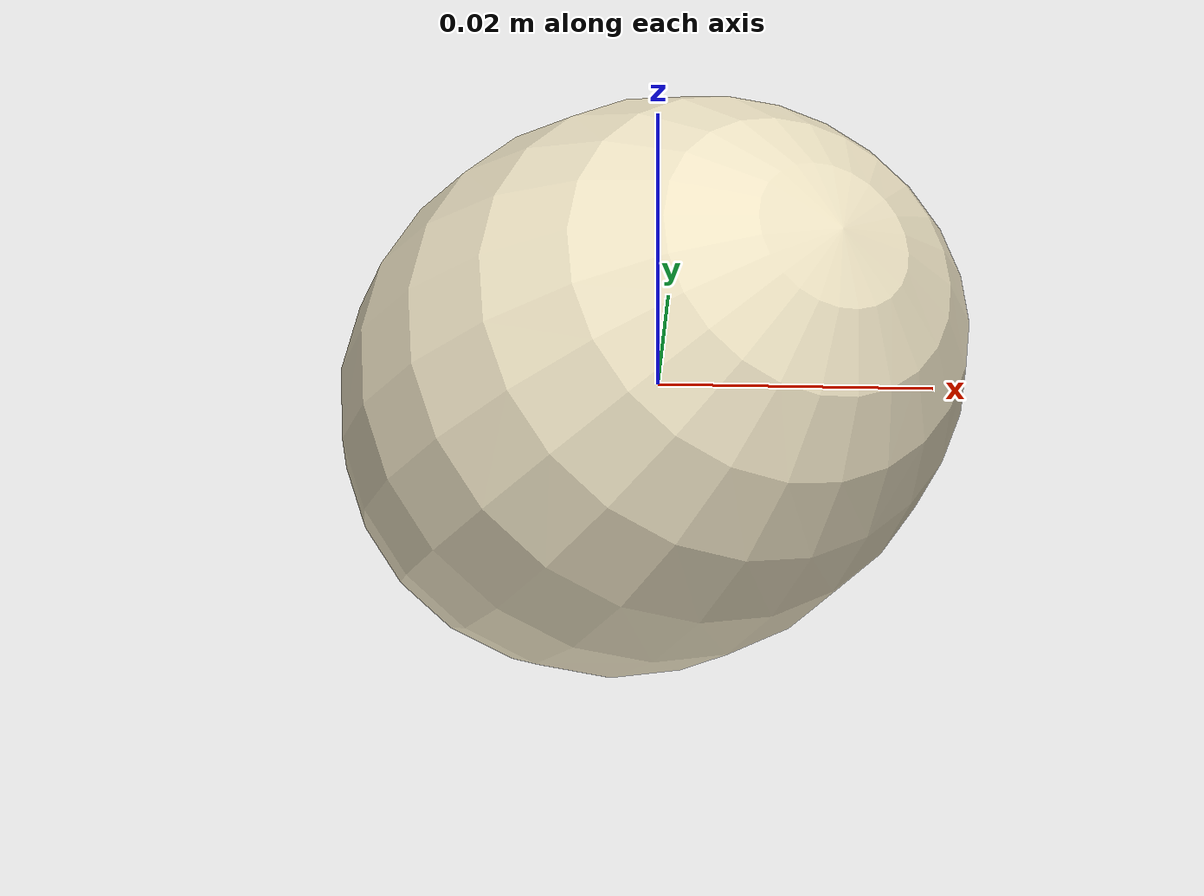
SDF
<?xml version="1.0"?>
<sdf version="1.7">
  <model name="cotton_pick_C_12">
    <static>false</static>
    <allow_auto_disable>false</allow_auto_disable>
    <link name="cotton_pick_C_12_link">
      <gravity>false</gravity>
      <self_collide>false</self_collide>
      <inertial>
        <mass>0.01200</mass>
        <inertia>
          <ixx>0.00000185</ixx>
          <iyy>0.00000185</iyy>
          <izz>0.00000185</izz>
          <ixy>0</ixy>
          <ixz>0</ixz>
          <iyz>0</iyz>
        </inertia>
      </inertial>
      <visual name="cotton_pick_C_12_visual">
        <geometry>
          <mesh>
            <uri>model://cotton_pick_C_12/meshes/cotton_pick_C_12.dae</uri>
          </mesh>
        </geometry>
      </visual>
      <collision name="cotton_pick_C_12_sphere_collision">
        <geometry>
          <sphere>
            <radius>0.01966</radius>
          </sphere>
        </geometry>
        <surface>
          <friction>
            <ode>
              <mu>1.6</mu>
              <mu2>1.6</mu2>
            </ode>
          </friction>
          <contact>
            <ode>
              <kp>8000</kp>
              <kd>80</kd>
            </ode>
          </contact>
        </surface>
      </collision>
    </link>
  </model>
</sdf>
